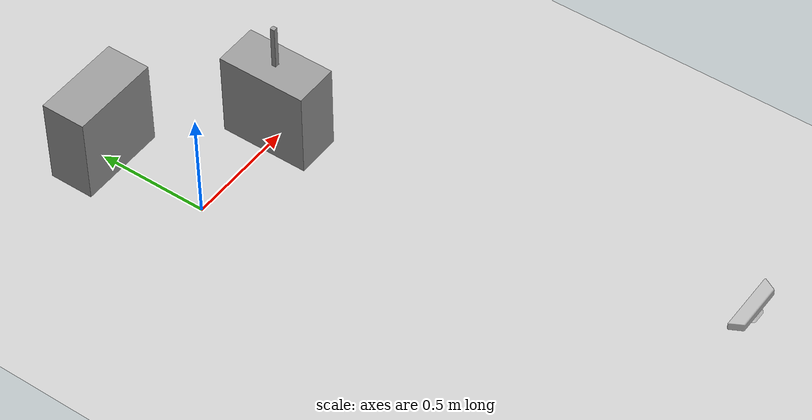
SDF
<sdf version="1.7">
 <world name="default">
  <light name="sun" type="directional">
   <pose>0 0 10 0 -0 0</pose>
   <diffuse>0.8 0.8 0.8 1</diffuse>
   <specular>0.2 0.2 0.2 1</specular>
   <attenuation>
    <range>1000</range>
    <constant>0.9</constant>
    <linear>0.01</linear>
    <quadratic>0.001</quadratic>
   </attenuation>
   <direction>-0.5 0.1 -0.9</direction>
   <spot><inner_angle>0</inner_angle><outer_angle>0</outer_angle><falloff>0</falloff></spot>
  </light>
  <model name="ground_plane">
   <static>1</static>
   <link name="link">
    <collision name="collision">
     <geometry><plane><normal>0 0 1</normal><size>100 100</size></plane></geometry>
     <surface>
      <contact><collide_bitmask>65535</collide_bitmask></contact>
      <friction><ode><mu>100</mu><mu2>50</mu2></ode></friction>
     </surface>
    </collision>
    <visual name="visual">
     <cast_shadows>0</cast_shadows>
     <geometry><plane><normal>0 0 1</normal><size>100 100</size></plane></geometry>
     <material>
      <script><uri>file://media/materials/scripts/gazebo.material</uri><name>Gazebo/Grey</name></script>
     </material>
    </visual>
   </link>
  </model>
  <gravity>0 0 -9.8</gravity>
  <magnetic_field>6e-06 2.3e-05 -4.2e-05</magnetic_field>
  <atmosphere type="adiabatic"/>
  <physics type="ode">
   <max_step_size>0.001</max_step_size>
   <real_time_factor>1</real_time_factor>
   <real_time_update_rate>1000</real_time_update_rate>
  </physics>
  <scene><ambient>0.4 0.4 0.4 1</ambient><background>0.7 0.7 0.7 1</background><shadows>1</shadows></scene>
  <spherical_coordinates>
   <surface_model>EARTH_WGS84</surface_model>
   <latitude_deg>0</latitude_deg>
   <longitude_deg>0</longitude_deg>
   <elevation>0</elevation>
   <heading_deg>0</heading_deg>
  </spherical_coordinates>
  <model name="model">
   <link name="link">
    <inertial>
     <mass>3</mass>
     <inertia><ixx>0.08</ixx><ixy>0</ixy><ixz>0</ixz><iyy>0.05</iyy><iyz>0</iyz><izz>0.05</izz></inertia>
    </inertial>
    <visual name="visual">
     <geometry><box><size>0.2 0.4 0.4</size></box></geometry>
     <material>
      <script><name>Gazebo/Grey</name><uri>file://media/materials/scripts/gazebo.material</uri></script>
      <shader type="pixel"><normal_map>__default__</normal_map></shader>
      <ambient>0.3 0.3 0.3 1</ambient>
      <diffuse>0.7 0.7 0.7 1</diffuse>
      <specular>0.01 0.01 0.01 1</specular>
      <emissive>0 0 0 1</emissive>
     </material>
    </visual>
    <collision name="collision">
     <geometry><box><size>0.2 0.4 0.4</size></box></geometry>
     <surface>
      <friction>
       <ode><mu>0.1</mu><mu2>0.1</mu2><fdir1>0 0 0</fdir1><slip1>0</slip1><slip2>0</slip2></ode>
       <torsional>
        <coefficient>1</coefficient>
        <patch_radius>0</patch_radius>
        <surface_radius>0</surface_radius>
        <use_patch_radius>1</use_patch_radius>
        <ode><slip>0</slip></ode>
       </torsional>
      </friction>
      <bounce><restitution_coefficient>0</restitution_coefficient><threshold>1e+06</threshold></bounce>
      <contact>
       <collide_without_contact>0</collide_without_contact>
       <collide_without_contact_bitmask>1</collide_without_contact_bitmask>
       <collide_bitmask>1</collide_bitmask>
       <ode>
        <soft_cfm>0</soft_cfm>
        <soft_erp>0.2</soft_erp>
        <kp>1e+13</kp>
        <kd>1</kd>
        <max_vel>0.01</max_vel>
        <min_depth>0</min_depth>
       </ode>
       <bullet>
        <split_impulse>1</split_impulse>
        <split_impulse_penetration_threshold>-0.01</split_impulse_penetration_threshold>
        <soft_cfm>0</soft_cfm>
        <soft_erp>0.2</soft_erp>
        <kp>1e+13</kp>
        <kd>1</kd>
       </bullet>
      </contact>
     </surface>
    </collision>
   </link>
   <static>0</static>
   <pose>0.499452 5.9e-05 0.199996 1.9e-05 -0 -5e-06</pose>
  </model>
  <model name="object">
   <link name="link">
    <inertial>
     <mass>0.5</mass>
     <inertia><ixx>0.0017</ixx><ixy>0</ixy><ixz>0</ixz><iyy>0.0017</iyy><iyz>0</iyz><izz>3.333e-05</izz></inertia>
    </inertial>
    <pose>0 0 0 -0.02 -0 -0</pose>
    <visual name="visual">
     <geometry><box><size>0.02 0.02 0.2</size></box></geometry>
     <material>
      <script><name>Gazebo/Grey</name><uri>file://media/materials/scripts/gazebo.material</uri></script>
      <shader type="pixel"><normal_map>__default__</normal_map></shader>
      <ambient>0.3 0.3 0.3 1</ambient>
      <diffuse>0.7 0.7 0.7 1</diffuse>
      <specular>0.01 0.01 0.01 1</specular>
      <emissive>0 0 0 1</emissive>
     </material>
    </visual>
    <collision name="collision">
     <max_contacts>14</max_contacts>
     <geometry><box><size>0.02 0.02 0.2</size></box></geometry>
     <surface>
      <friction>
       <ode><mu>1</mu><mu2>1</mu2><fdir1>0 0 0</fdir1><slip1>0</slip1><slip2>0</slip2></ode>
       <torsional>
        <coefficient>1</coefficient>
        <patch_radius>0</patch_radius>
        <surface_radius>0</surface_radius>
        <use_patch_radius>1</use_patch_radius>
        <ode><slip>0</slip></ode>
       </torsional>
      </friction>
      <bounce><restitution_coefficient>0</restitution_coefficient><threshold>1e+06</threshold></bounce>
      <contact>
       <collide_without_contact>0</collide_without_contact>
       <collide_without_contact_bitmask>1</collide_without_contact_bitmask>
       <collide_bitmask>1</collide_bitmask>
       <ode>
        <soft_cfm>0</soft_cfm>
        <soft_erp>0.2</soft_erp>
        <kp>10000</kp>
        <kd>1000</kd>
        <max_vel>0.01</max_vel>
        <min_depth>0.01</min_depth>
       </ode>
       <bullet>
        <split_impulse>1</split_impulse>
        <split_impulse_penetration_threshold>-0.01</split_impulse_penetration_threshold>
        <soft_cfm>0</soft_cfm>
        <soft_erp>0.2</soft_erp>
        <kp>10000</kp>
        <kd>1000</kd>
       </bullet>
      </contact>
     </surface>
    </collision>
   </link>
   <static>0</static>
   <pose>0.499411 0.000882 0.499874 0.019947 -0 -0.000125</pose>
  </model>
  <model name="kinect_ros">
   <static>1</static>
   <pose>0.8 -2 0.036 0 -0 1.57</pose>
   <link name="link">
    <inertial><mass>0.1</mass></inertial>
    <collision name="collision"><geometry><box><size>0.073 0.276 0.072</size></box></geometry></collision>
    <visual name="visual"><geometry><mesh><uri>model://kinect/meshes/kinect.dae</uri></mesh></geometry></visual>
    <sensor name="camera" type="depth">
     <update_rate>20</update_rate>
     <camera>
      <horizontal_fov>1.0472</horizontal_fov>
      <image><width>640</width><height>480</height><format>R8G8B8</format></image>
      <clip><near>0.05</near><far>3</far></clip>
     </camera>
     <plugin name="camera_plugin" filename="libgazebo_ros_openni_kinect.so">
      <baseline>0.2</baseline>
      <alwaysOn>1</alwaysOn>
      <updateRate>0.0</updateRate>
      <cameraName>camera_ir</cameraName>
      <imageTopicName>/camera/color/image_raw</imageTopicName>
      <cameraInfoTopicName>/camera/color/camera_info</cameraInfoTopicName>
      <depthImageTopicName>/camera/depth/image_raw</depthImageTopicName>
      <depthImageCameraInfoTopicName>/camera/depth_registered/camera_info</depthImageCameraInfoTopicName>
      <pointCloudTopicName>/camera/depth_registered/points</pointCloudTopicName>
      <frameName>camera_link</frameName>
      <pointCloudCutoff>0.5</pointCloudCutoff>
      <pointCloudCutoffMax>3.0</pointCloudCutoffMax>
      <distortionK1>0</distortionK1>
      <distortionK2>0</distortionK2>
      <distortionK3>0</distortionK3>
      <distortionT1>0</distortionT1>
      <distortionT2>0</distortionT2>
      <CxPrime>0</CxPrime>
      <Cx>0</Cx>
      <Cy>0</Cy>
      <focalLength>0</focalLength>
      <hackBaseline>0</hackBaseline>
     </plugin>
    </sensor>
   </link>
  </model>
  <model name="table2">
   <link name="link">
    <inertial>
     <mass>1</mass>
     <inertia>
      <ixx>0.166667</ixx>
      <ixy>0</ixy>
      <ixz>0</ixz>
      <iyy>0.166667</iyy>
      <iyz>0</iyz>
      <izz>0.166667</izz>
     </inertia>
    </inertial>
    <visual name="visual">
     <geometry><box><size>0.4 0.2 0.4</size></box></geometry>
     <material>
      <script><name>Gazebo/Grey</name><uri>file://media/materials/scripts/gazebo.material</uri></script>
      <shader type="pixel"><normal_map>__default__</normal_map></shader>
      <ambient>0.3 0.3 0.3 1</ambient>
      <diffuse>0.7 0.7 0.7 1</diffuse>
      <specular>0.01 0.01 0.01 1</specular>
      <emissive>0 0 0 1</emissive>
     </material>
    </visual>
    <collision name="collision">
     <geometry><box><size>0.4 0.2 0.4</size></box></geometry>
     <surface>
      <friction>
       <ode><mu>1</mu><mu2>1</mu2><fdir1>0 0 0</fdir1><slip1>0</slip1><slip2>0</slip2></ode>
       <torsional>
        <coefficient>1</coefficient>
        <patch_radius>0</patch_radius>
        <surface_radius>0</surface_radius>
        <use_patch_radius>1</use_patch_radius>
        <ode><slip>0</slip></ode>
       </torsional>
      </friction>
      <bounce><restitution_coefficient>0</restitution_coefficient><threshold>1e+06</threshold></bounce>
      <contact>
       <collide_without_contact>0</collide_without_contact>
       <collide_without_contact_bitmask>1</collide_without_contact_bitmask>
       <collide_bitmask>1</collide_bitmask>
       <ode>
        <soft_cfm>0</soft_cfm>
        <soft_erp>0.2</soft_erp>
        <kp>1e+13</kp>
        <kd>1</kd>
        <max_vel>0.01</max_vel>
        <min_depth>0</min_depth>
       </ode>
       <bullet>
        <split_impulse>1</split_impulse>
        <split_impulse_penetration_threshold>-0.01</split_impulse_penetration_threshold>
        <soft_cfm>0</soft_cfm>
        <soft_erp>0.2</soft_erp>
        <kp>1e+13</kp>
        <kd>1</kd>
       </bullet>
      </contact>
     </surface>
    </collision>
   </link>
   <static>0</static>
   <pose>0 0.5 0.200001 -1e-06 2e-06 -1.1e-05</pose>
  </model>
 </world>
</sdf>
